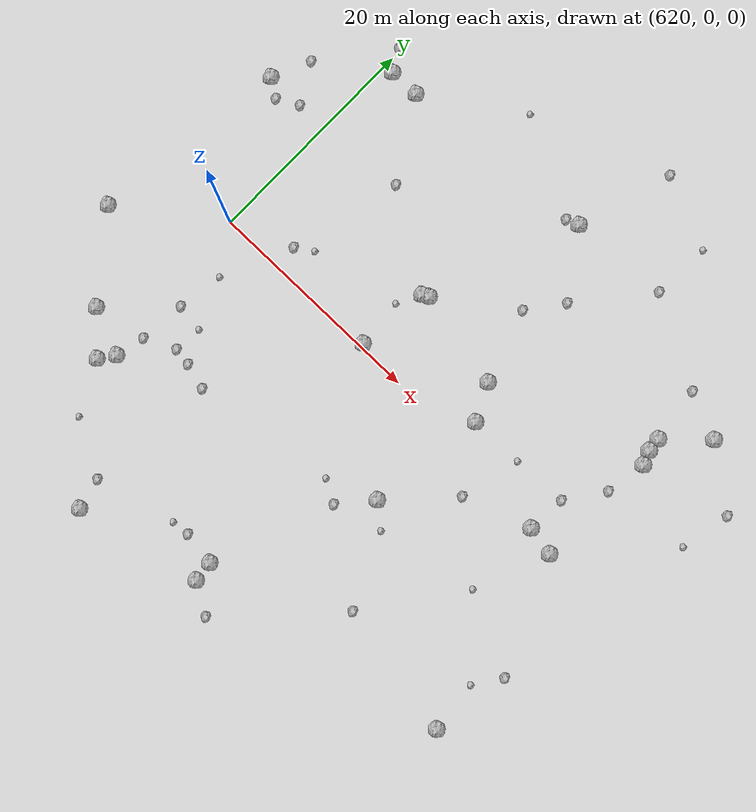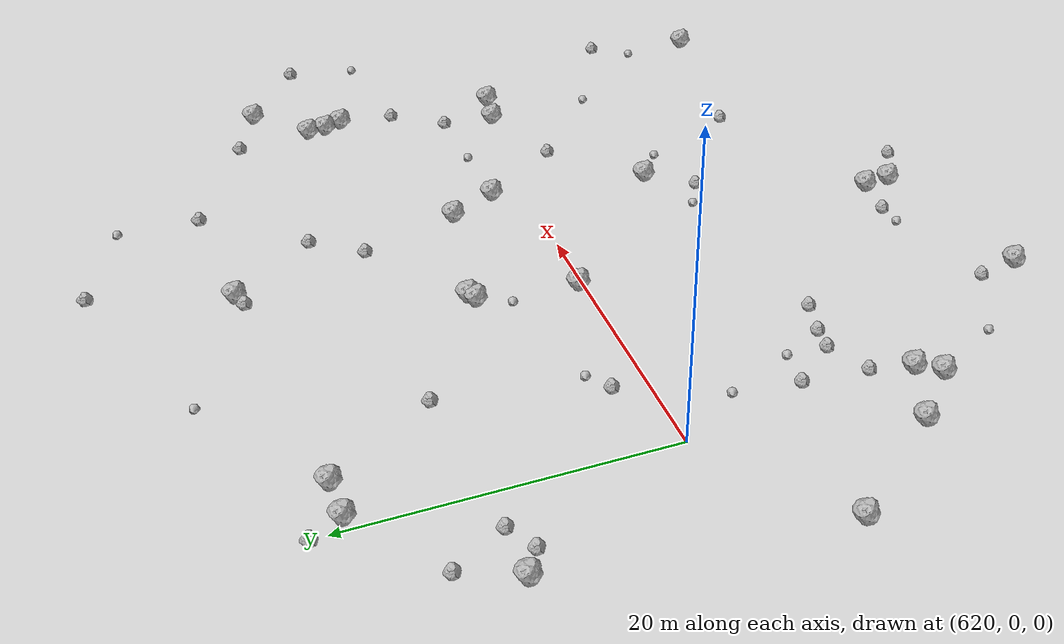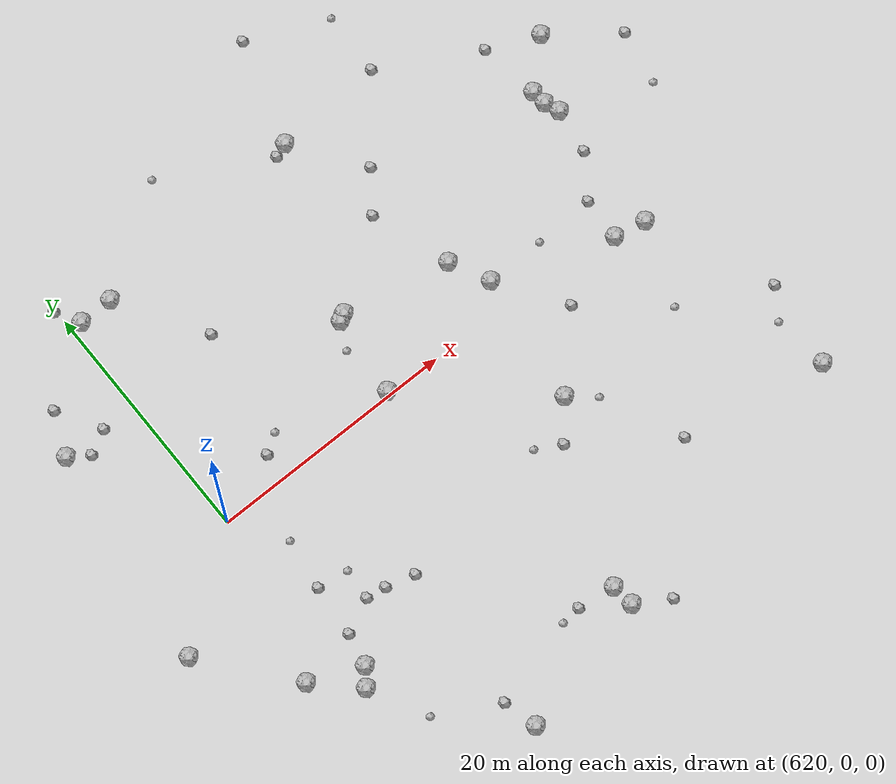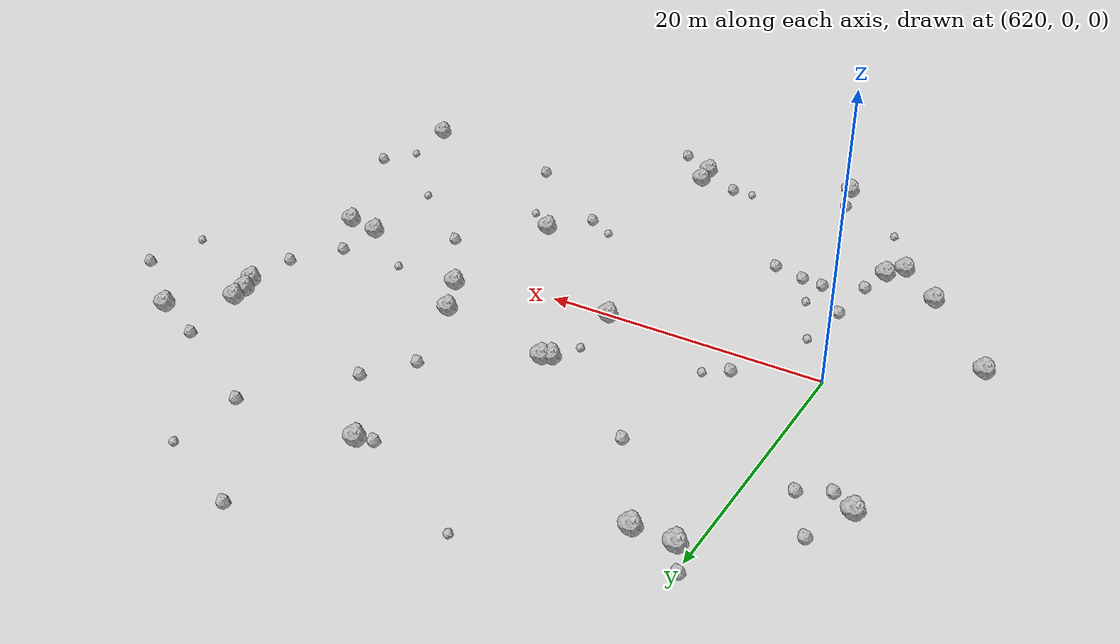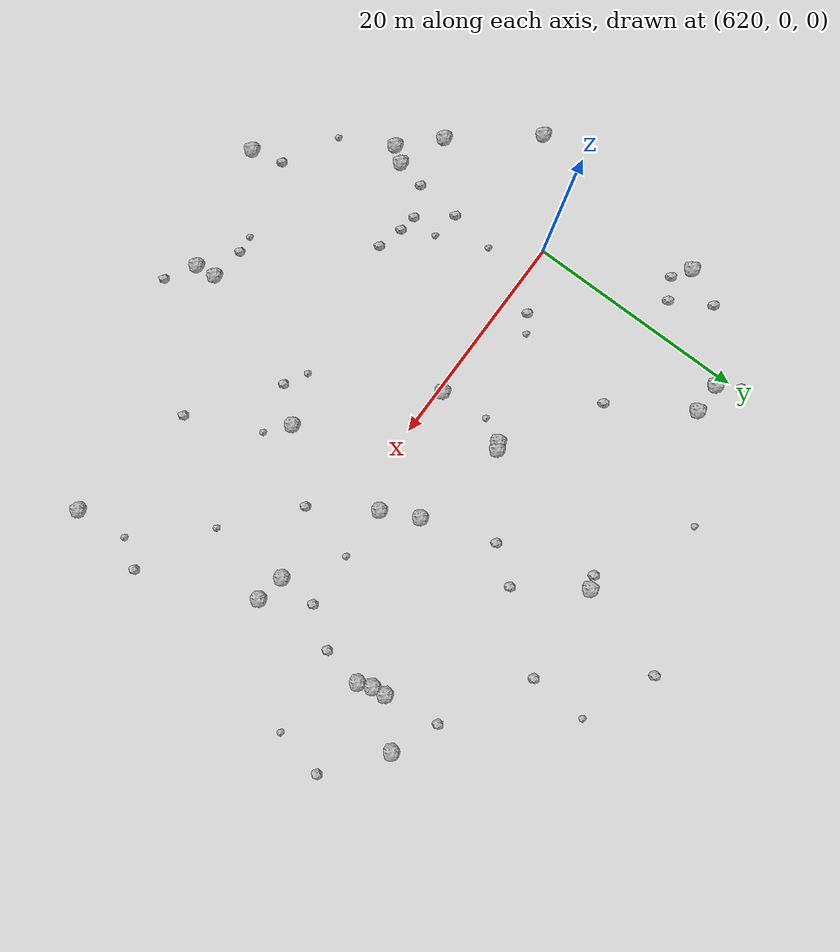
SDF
<sdf version="1.6">
 <world name="default">
  <include><uri>model://sun</uri></include>
  <model name="rock1_16_3">
   <include><uri>model://rock1</uri><pose>659.1441097531886 11.778174103529516 0.5 0 0 0</pose></include>
  </model>
  <model name="rock1_16_4">
   <include><uri>model://rock1</uri><pose>639.1990479366925 -21.882768692814317 0.5 0 0 0</pose></include>
  </model>
  <model name="rock1_16_5">
   <include><uri>model://rock1</uri><pose>659.7290785885483 9.307201311774712 0.5 0 0 0</pose></include>
  </model>
  <model name="rock1_16_6">
   <include><uri>model://rock1</uri><pose>656.5898507007947 -1.111272749736667 0.5 0 0 0</pose></include>
  </model>
  <model name="rock1_16_7">
   <include><uri>model://rock1</uri><pose>611.5250470145841 -6.228511308894252 0.5 0 0 0</pose></include>
  </model>
  <model name="rock1_16_8">
   <include><uri>model://rock1</uri><pose>659.1804401953616 -1.6006830373529475 0.5 0 0 0</pose></include>
  </model>
  <model name="rock1_16_9">
   <include><uri>model://rock1</uri><pose>636.8134339586728 7.117398691884645 0.5 0 0 0</pose></include>
  </model>
  <model name="rock1_16_10">
   <include><uri>model://rock1</uri><pose>662.5832059089335 15.002827945160988 0.5 0 0 0</pose></include>
  </model>
  <model name="rock1_16_11">
   <include><uri>model://rock1</uri><pose>636.2418984701488 6.806027263695903 0.5 0 0 0</pose></include>
  </model>
  <model name="rock1_16_12">
   <include><uri>model://rock1</uri><pose>662.3989068925781 -18.594136977272207 0.5 0 0 0</pose></include>
  </model>
  <model name="rock1_16_13">
   <include><uri>model://rock1</uri><pose>621.2149597211422 -14.89796425463397 0.5 0 0 0</pose></include>
  </model>
  <model name="rock1_16_14">
   <include><uri>model://rock1</uri><pose>613.7212892025591 11.466088666321454 0.5 0 0 0</pose></include>
  </model>
  <model name="rock1_16_15">
   <include><uri>model://rock1</uri><pose>647.0487267965822 2.1205622533207205 0.5 0 0 0</pose></include>
  </model>
  <model name="rock1_16_16">
   <include><uri>model://rock1</uri><pose>639.407315010538 -23.712851958101474 0.5 0 0 0</pose></include>
  </model>
  <model name="rock1_16_17">
   <include><uri>model://rock1</uri><pose>617.0588056630578 -13.163452952086008 0.5 0 0 0</pose></include>
  </model>
  <model name="rock1_16_18">
   <include><uri>model://rock1</uri><pose>641.7352674847142 20.49229040175002 0.5 0 0 0</pose></include>
  </model>
  <model name="rock1_16_19">
   <include><uri>model://rock1</uri><pose>635.5589536215732 0.33323715873854454 0.5 0 0 0</pose></include>
  </model>
  <model name="rock1_16_20">
   <include><uri>model://rock1</uri><pose>659.2549599271155 10.538810341143027 0.5 0 0 0</pose></include>
  </model>
  <model name="rock1_16_21">
   <include><uri>model://rock1</uri><pose>620.9908619542475 19.042026972872087 0.5 0 0 0</pose></include>
  </model>
  <model name="rock1_16_22">
   <include><uri>model://rock1</uri><pose>628.1422550459888 -26.25202805374458 0.5 0 0 0</pose></include>
  </model>
  <model name="rock1_16_23">
   <include><uri>model://rock1</uri><pose>620.2240069076948 -16.25206029208431 0.5 0 0 0</pose></include>
  </model>
  <model name="rock1_16_24">
   <include><uri>model://rock1</uri><pose>645.4758432026235 5.299288889654335 0.5 0 0 0</pose></include>
  </model>
  <model name="rock1_16_25">
   <include><uri>model://rock1</uri><pose>623.7471108175816 19.064468761313194 0.5 0 0 0</pose></include>
  </model>
  <model name="rock1_16_26">
   <include><uri>model://rock1</uri><pose>645.643365577836 -8.364742773208079 0.5 0 0 0</pose></include>
  </model>
  <model name="rock2_16_0">
   <include><uri>model://rock2</uri><pose>640.5580833164503 20.11697497863782 0.3 0 0 0</pose></include>
  </model>
  <model name="rock2_16_1">
   <include><uri>model://rock2</uri><pose>627.9821436199358 12.186808306631463 0.3 0 0 0</pose></include>
  </model>
  <model name="rock2_16_2">
   <include><uri>model://rock2</uri><pose>636.1486172775865 -21.451687168138882 0.3 0 0 0</pose></include>
  </model>
  <model name="rock2_16_3">
   <include><uri>model://rock2</uri><pose>626.0362831182921 -11.229660957841126 0.3 0 0 0</pose></include>
  </model>
  <model name="rock2_16_4">
   <include><uri>model://rock2</uri><pose>625.4738302454093 2.200302861678189 0.3 0 0 0</pose></include>
  </model>
  <model name="rock2_16_5">
   <include><uri>model://rock2</uri><pose>643.2269801734277 -11.15062543939801 0.3 0 0 0</pose></include>
  </model>
  <model name="rock2_16_6">
   <include><uri>model://rock2</uri><pose>656.7910697405161 2.377941157924049 0.3 0 0 0</pose></include>
  </model>
  <model name="rock2_16_7">
   <include><uri>model://rock2</uri><pose>624.4486816277977 -10.988640454742335 0.3 0 0 0</pose></include>
  </model>
  <model name="rock2_16_8">
   <include><uri>model://rock2</uri><pose>621.7411531667186 -12.265001500985736 0.3 0 0 0</pose></include>
  </model>
  <model name="rock2_16_9">
   <include><uri>model://rock2</uri><pose>658.4404734544352 16.800300898875612 0.3 0 0 0</pose></include>
  </model>
  <model name="rock2_16_10">
   <include><uri>model://rock2</uri><pose>644.3403999184038 29.110826301480877 0.3 0 0 0</pose></include>
  </model>
  <model name="rock2_16_11">
   <include><uri>model://rock2</uri><pose>619.8121482761221 21.04313034735376 0.3 0 0 0</pose></include>
  </model>
  <model name="rock2_16_12">
   <include><uri>model://rock2</uri><pose>650.5666061782807 -3.1699068532596435 0.3 0 0 0</pose></include>
  </model>
  <model name="rock2_16_13">
   <include><uri>model://rock2</uri><pose>627.4207551742919 -23.459350605388664 0.3 0 0 0</pose></include>
  </model>
  <model name="rock2_16_14">
   <include><uri>model://rock2</uri><pose>615.264473744724 10.43610269822684 0.3 0 0 0</pose></include>
  </model>
  <model name="rock2_16_15">
   <include><uri>model://rock2</uri><pose>643.3134747655538 11.832795841601552 0.3 0 0 0</pose></include>
  </model>
  <model name="rock2_16_16">
   <include><uri>model://rock2</uri><pose>645.6176779963333 14.937815167308315 0.3 0 0 0</pose></include>
  </model>
  <model name="rock2_16_17">
   <include><uri>model://rock2</uri><pose>659.1221582836557 5.687762088689929 0.3 0 0 0</pose></include>
  </model>
  <model name="rock2_16_18">
   <include><uri>model://rock2</uri><pose>650.60121428292 21.061302680053643 0.3 0 0 0</pose></include>
  </model>
  <model name="rock2_16_19">
   <include><uri>model://rock2</uri><pose>628.3699781629781 -11.872895431459465 0.3 0 0 0</pose></include>
  </model>
  <model name="rock2_16_20">
   <include><uri>model://rock2</uri><pose>617.1718061572822 11.456267067367278 0.3 0 0 0</pose></include>
  </model>
  <model name="rock2_16_21">
   <include><uri>model://rock2</uri><pose>642.067224770717 -25.316249283932038 0.3 0 0 0</pose></include>
  </model>
  <model name="rock2_16_22">
   <include><uri>model://rock2</uri><pose>615.1537257830151 14.92806131513455 0.3 0 0 0</pose></include>
  </model>
  <model name="rock2_16_23">
   <include><uri>model://rock2</uri><pose>663.5508597161469 -11.635316962268824 0.3 0 0 0</pose></include>
  </model>
  <model name="rock2_16_24">
   <include><uri>model://rock2</uri><pose>650.6029168568266 -16.454352002709527 0.3 0 0 0</pose></include>
  </model>
  <model name="rock2_16_25">
   <include><uri>model://rock2</uri><pose>622.1204028532118 -8.126840847701317 0.3 0 0 0</pose></include>
  </model>
  <model name="rock2_16_26">
   <include><uri>model://rock2</uri><pose>667.7374490105726 11.107936431819525 0.3 0 0 0</pose></include>
  </model>
  <model name="rock3_16_0">
   <include><uri>model://rock3</uri><pose>651.8607707470621 2.1676893610059267 0.2 0 0 0</pose></include>
  </model>
  <model name="rock3_16_1">
   <include><uri>model://rock3</uri><pose>647.6327890543558 -10.05333815919743 0.2 0 0 0</pose></include>
  </model>
  <model name="rock3_16_2">
   <include><uri>model://rock3</uri><pose>656.5610963915634 -8.214952764917708 0.2 0 0 0</pose></include>
  </model>
  <model name="rock3_16_3">
   <include><uri>model://rock3</uri><pose>641.2187801633528 -10.083883257639584 0.2 0 0 0</pose></include>
  </model>
  <model name="rock3_16_4">
   <include><uri>model://rock3</uri><pose>622.7040085651796 -4.07014499177194 0.2 0 0 0</pose></include>
  </model>
  <model name="rock3_16_5">
   <include><uri>model://rock3</uri><pose>634.5396448645848 -21.633111956465207 0.2 0 0 0</pose></include>
  </model>
  <model name="rock3_16_6">
   <include><uri>model://rock3</uri><pose>666.8422813136573 6.594424150053349 0.2 0 0 0</pose></include>
  </model>
  <model name="rock3_16_7">
   <include><uri>model://rock3</uri><pose>635.1215308457785 4.715636036591199 0.2 0 0 0</pose></include>
  </model>
  <model name="rock3_16_8">
   <include><uri>model://rock3</uri><pose>632.0043281384147 24.6418754588437 0.2 0 0 0</pose></include>
  </model>
  <model name="rock3_16_9">
   <include><uri>model://rock3</uri><pose>650.8265304996168 26.267764712194406 0.2 0 0 0</pose></include>
  </model>
  <model name="rock3_16_10">
   <include><uri>model://rock3</uri><pose>622.5292002360786 -20.851501408307094 0.2 0 0 0</pose></include>
  </model>
  <model name="rock3_16_11">
   <include><uri>model://rock3</uri><pose>624.6219466920717 -8.523095275499937 0.2 0 0 0</pose></include>
  </model>
  <model name="rock3_16_12">
   <include><uri>model://rock3</uri><pose>661.9059654951109 -14.06840587530844 0.2 0 0 0</pose></include>
  </model>
  <model name="rock3_16_13">
   <include><uri>model://rock3</uri><pose>626.9934169582694 3.1699289675702644 0.2 0 0 0</pose></include>
  </model>
 </world>
</sdf>
